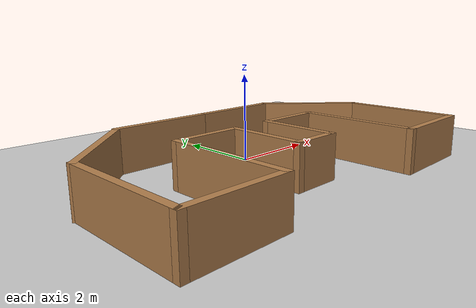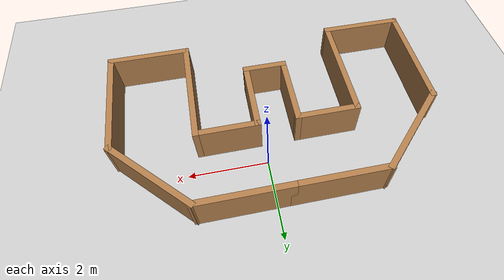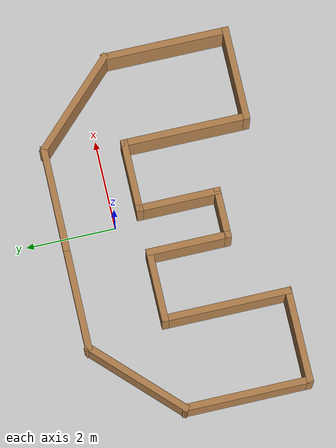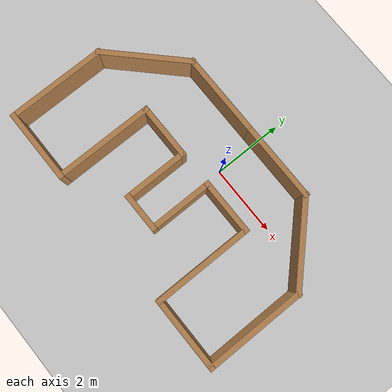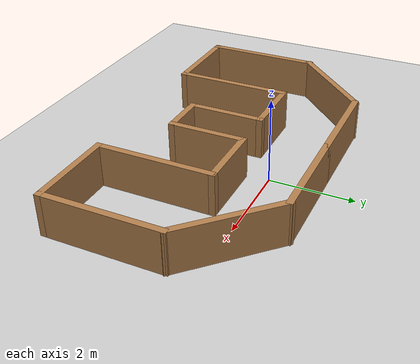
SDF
<sdf version='1.7'>
  <world name='default'>
    <light name='sun' type='directional'>
      <cast_shadows>1</cast_shadows>
      <pose>0 0 10 0 -0 0</pose>
      <diffuse>0.8 0.8 0.8 1</diffuse>
      <specular>0.2 0.2 0.2 1</specular>
      <attenuation>
        <range>1000</range>
        <constant>0.9</constant>
        <linear>0.01</linear>
        <quadratic>0.001</quadratic>
      </attenuation>
      <direction>-0.5 0.1 -0.9</direction>
      <spot>
        <inner_angle>0</inner_angle>
        <outer_angle>0</outer_angle>
        <falloff>0</falloff>
      </spot>
    </light>
    <model name='ground_plane'>
      <static>1</static>
      <link name='link'>
        <collision name='collision'>
          <geometry>
            <plane>
              <normal>0 0 1</normal>
              <size>100 100</size>
            </plane>
          </geometry>
          <surface>
            <contact>
              <collide_bitmask>65535</collide_bitmask>
              <ode/>
            </contact>
            <friction>
              <ode>
                <mu>100</mu>
                <mu2>50</mu2>
              </ode>
              <torsional>
                <ode/>
              </torsional>
            </friction>
            <bounce/>
          </surface>
          <max_contacts>10</max_contacts>
        </collision>
        <visual name='visual'>
          <cast_shadows>0</cast_shadows>
          <geometry>
            <plane>
              <normal>0 0 1</normal>
              <size>100 100</size>
            </plane>
          </geometry>
          <material>
            <script>
              <uri>file://media/materials/scripts/gazebo.material</uri>
              <name>Gazebo/Grey</name>
            </script>
          </material>
        </visual>
        <self_collide>0</self_collide>
        <enable_wind>0</enable_wind>
        <kinematic>0</kinematic>
      </link>
    </model>
    <gravity>0 0 -9.8</gravity>
    <magnetic_field>6e-06 2.3e-05 -4.2e-05</magnetic_field>
    <atmosphere type='adiabatic'/>
    <physics type='ode'>
      <max_step_size>0.001</max_step_size>
      <real_time_factor>1</real_time_factor>
      <real_time_update_rate>1000</real_time_update_rate>
    </physics>
    <scene>
      <ambient>0.4 0.4 0.4 1</ambient>
      <background>0.7 0.7 0.7 1</background>
      <shadows>1</shadows>
    </scene>
    <wind/>
    <spherical_coordinates>
      <surface_model>EARTH_WGS84</surface_model>
      <latitude_deg>0</latitude_deg>
      <longitude_deg>0</longitude_deg>
      <elevation>0</elevation>
      <heading_deg>0</heading_deg>
    </spherical_coordinates>
    <model name='aro_easy_1'>
      <pose>-0.369717 -0.872693 0 0 -0 0</pose>
      <link name='Wall_0'>
        <collision name='Wall_0_Collision'>
          <geometry>
            <box>
              <size>2.9 0.15 1</size>
            </box>
          </geometry>
          <pose>0 0 0.5 0 -0 0</pose>
          <max_contacts>10</max_contacts>
          <surface>
            <contact>
              <ode/>
            </contact>
            <bounce/>
            <friction>
              <torsional>
                <ode/>
              </torsional>
              <ode/>
            </friction>
          </surface>
        </collision>
        <visual name='Wall_0_Visual'>
          <pose>0 0 0.5 0 -0 0</pose>
          <geometry>
            <box>
              <size>2.9 0.15 1</size>
            </box>
          </geometry>
          <material>
            <script>
              <uri>file://media/materials/scripts/gazebo.material</uri>
              <name>Gazebo/Wood</name>
            </script>
            <ambient>1 1 1 1</ambient>
          </material>
          <meta>
            <layer>0</layer>
          </meta>
        </visual>
        <pose>-2 -1.0875 0 0 -0 -1.5708</pose>
        <self_collide>0</self_collide>
        <enable_wind>0</enable_wind>
        <kinematic>0</kinematic>
      </link>
      <link name='Wall_1'>
        <collision name='Wall_1_Collision'>
          <geometry>
            <box>
              <size>2.15 0.15 1</size>
            </box>
          </geometry>
          <pose>0 0 0.5 0 -0 0</pose>
          <max_contacts>10</max_contacts>
          <surface>
            <contact>
              <ode/>
            </contact>
            <bounce/>
            <friction>
              <torsional>
                <ode/>
              </torsional>
              <ode/>
            </friction>
          </surface>
        </collision>
        <visual name='Wall_1_Visual'>
          <pose>0 0 0.5 0 -0 0</pose>
          <geometry>
            <box>
              <size>2.15 0.15 1</size>
            </box>
          </geometry>
          <material>
            <script>
              <uri>file://media/materials/scripts/gazebo.material</uri>
              <name>Gazebo/Wood</name>
            </script>
            <ambient>1 1 1 1</ambient>
          </material>
          <meta>
            <layer>0</layer>
          </meta>
        </visual>
        <pose>-3 -2.4625 0 0 -0 3.14159</pose>
        <self_collide>0</self_collide>
        <enable_wind>0</enable_wind>
        <kinematic>0</kinematic>
      </link>
      <link name='Wall_11'>
        <collision name='Wall_11_Collision'>
          <geometry>
            <box>
              <size>2.9 0.15 1</size>
            </box>
          </geometry>
          <pose>0 0 0.5 0 -0 0</pose>
          <max_contacts>10</max_contacts>
          <surface>
            <contact>
              <ode/>
            </contact>
            <bounce/>
            <friction>
              <torsional>
                <ode/>
              </torsional>
              <ode/>
            </friction>
          </surface>
        </collision>
        <visual name='Wall_11_Visual'>
          <pose>0 0 0.5 0 -0 0</pose>
          <geometry>
            <box>
              <size>2.9 0.15 1</size>
            </box>
          </geometry>
          <material>
            <script>
              <uri>file://media/materials/scripts/gazebo.material</uri>
              <name>Gazebo/Wood</name>
            </script>
            <ambient>1 1 1 1</ambient>
          </material>
          <meta>
            <layer>0</layer>
          </meta>
        </visual>
        <pose>4 -1.0875 0 0 -0 -1.5708</pose>
        <self_collide>0</self_collide>
        <enable_wind>0</enable_wind>
        <kinematic>0</kinematic>
      </link>
      <link name='Wall_12'>
        <collision name='Wall_12_Collision'>
          <geometry>
            <box>
              <size>2.15 0.15 1</size>
            </box>
          </geometry>
          <pose>0 0 0.5 0 -0 0</pose>
          <max_contacts>10</max_contacts>
          <surface>
            <contact>
              <ode/>
            </contact>
            <bounce/>
            <friction>
              <torsional>
                <ode/>
              </torsional>
              <ode/>
            </friction>
          </surface>
        </collision>
        <visual name='Wall_12_Visual'>
          <pose>0 0 0.5 0 -0 0</pose>
          <geometry>
            <box>
              <size>2.15 0.15 1</size>
            </box>
          </geometry>
          <material>
            <script>
              <uri>file://media/materials/scripts/gazebo.material</uri>
              <name>Gazebo/Wood</name>
            </script>
            <ambient>1 1 1 1</ambient>
          </material>
          <meta>
            <layer>0</layer>
          </meta>
        </visual>
        <pose>3 -2.4625 0 0 -0 3.14159</pose>
        <self_collide>0</self_collide>
        <enable_wind>0</enable_wind>
        <kinematic>0</kinematic>
      </link>
      <link name='Wall_17'>
        <collision name='Wall_17_Collision'>
          <geometry>
            <box>
              <size>2.9 0.15 1</size>
            </box>
          </geometry>
          <pose>0 0 0.5 0 -0 0</pose>
          <max_contacts>10</max_contacts>
          <surface>
            <contact>
              <ode/>
            </contact>
            <bounce/>
            <friction>
              <torsional>
                <ode/>
              </torsional>
              <ode/>
            </friction>
          </surface>
        </collision>
        <visual name='Wall_17_Visual'>
          <pose>0 0 0.5 0 -0 0</pose>
          <geometry>
            <box>
              <size>2.9 0.15 1</size>
            </box>
          </geometry>
          <material>
            <script>
              <uri>file://media/materials/scripts/gazebo.material</uri>
              <name>Gazebo/Wood</name>
            </script>
            <ambient>1 1 1 1</ambient>
          </material>
          <meta>
            <layer>0</layer>
          </meta>
        </visual>
        <pose>2 -1.0875 0 0 -0 1.5708</pose>
        <self_collide>0</self_collide>
        <enable_wind>0</enable_wind>
        <kinematic>0</kinematic>
      </link>
      <link name='Wall_18'>
        <collision name='Wall_18_Collision'>
          <geometry>
            <box>
              <size>1.65 0.15 1</size>
            </box>
          </geometry>
          <pose>0 0 0.5 0 -0 0</pose>
          <max_contacts>10</max_contacts>
          <surface>
            <contact>
              <ode/>
            </contact>
            <bounce/>
            <friction>
              <torsional>
                <ode/>
              </torsional>
              <ode/>
            </friction>
          </surface>
        </collision>
        <visual name='Wall_18_Visual'>
          <pose>0 0 0.5 0 -0 0</pose>
          <geometry>
            <box>
              <size>1.65 0.15 1</size>
            </box>
          </geometry>
          <material>
            <script>
              <uri>file://media/materials/scripts/gazebo.material</uri>
              <name>Gazebo/Wood</name>
            </script>
            <ambient>1 1 1 1</ambient>
          </material>
          <meta>
            <layer>0</layer>
          </meta>
        </visual>
        <pose>1.25 0.2875 0 0 -0 3.14159</pose>
        <self_collide>0</self_collide>
        <enable_wind>0</enable_wind>
        <kinematic>0</kinematic>
      </link>
      <link name='Wall_19'>
        <collision name='Wall_19_Collision'>
          <geometry>
            <box>
              <size>1.9 0.15 1</size>
            </box>
          </geometry>
          <pose>0 0 0.5 0 -0 0</pose>
          <max_contacts>10</max_contacts>
          <surface>
            <contact>
              <ode/>
            </contact>
            <bounce/>
            <friction>
              <torsional>
                <ode/>
              </torsional>
              <ode/>
            </friction>
          </surface>
        </collision>
        <visual name='Wall_19_Visual'>
          <pose>0 0 0.5 0 -0 0</pose>
          <geometry>
            <box>
              <size>1.9 0.15 1</size>
            </box>
          </geometry>
          <material>
            <script>
              <uri>file://media/materials/scripts/gazebo.material</uri>
              <name>Gazebo/Wood</name>
            </script>
            <ambient>1 1 1 1</ambient>
          </material>
          <meta>
            <layer>0</layer>
          </meta>
        </visual>
        <pose>0.5 -0.5875 0 0 -0 -1.5708</pose>
        <self_collide>0</self_collide>
        <enable_wind>0</enable_wind>
        <kinematic>0</kinematic>
      </link>
      <link name='Wall_2'>
        <collision name='Wall_2_Collision'>
          <geometry>
            <box>
              <size>2.9 0.15 1</size>
            </box>
          </geometry>
          <pose>0 0 0.5 0 -0 0</pose>
          <max_contacts>10</max_contacts>
          <surface>
            <contact>
              <ode/>
            </contact>
            <bounce/>
            <friction>
              <torsional>
                <ode/>
              </torsional>
              <ode/>
            </friction>
          </surface>
        </collision>
        <visual name='Wall_2_Visual'>
          <pose>0 0 0.5 0 -0 0</pose>
          <geometry>
            <box>
              <size>2.9 0.15 1</size>
            </box>
          </geometry>
          <material>
            <script>
              <uri>file://media/materials/scripts/gazebo.material</uri>
              <name>Gazebo/Wood</name>
            </script>
            <ambient>1 1 1 1</ambient>
          </material>
          <meta>
            <layer>0</layer>
          </meta>
        </visual>
        <pose>-4 -1.0875 0 0 -0 1.5708</pose>
        <self_collide>0</self_collide>
        <enable_wind>0</enable_wind>
        <kinematic>0</kinematic>
      </link>
      <link name='Wall_20'>
        <collision name='Wall_20_Collision'>
          <geometry>
            <box>
              <size>1.15 0.15 1</size>
            </box>
          </geometry>
          <pose>0 0 0.5 0 -0 0</pose>
          <max_contacts>10</max_contacts>
          <surface>
            <contact>
              <ode/>
            </contact>
            <bounce/>
            <friction>
              <torsional>
                <ode/>
              </torsional>
              <ode/>
            </friction>
          </surface>
        </collision>
        <visual name='Wall_20_Visual'>
          <pose>0 0 0.5 0 -0 0</pose>
          <geometry>
            <box>
              <size>1.15 0.15 1</size>
            </box>
          </geometry>
          <material>
            <script>
              <uri>file://media/materials/scripts/gazebo.material</uri>
              <name>Gazebo/Wood</name>
            </script>
            <ambient>1 1 1 1</ambient>
          </material>
          <meta>
            <layer>0</layer>
          </meta>
        </visual>
        <pose>0 -1.4625 0 0 -0 3.14159</pose>
        <self_collide>0</self_collide>
        <enable_wind>0</enable_wind>
        <kinematic>0</kinematic>
      </link>
      <link name='Wall_21'>
        <collision name='Wall_21_Collision'>
          <geometry>
            <box>
              <size>1.9 0.15 1</size>
            </box>
          </geometry>
          <pose>0 0 0.5 0 -0 0</pose>
          <max_contacts>10</max_contacts>
          <surface>
            <contact>
              <ode/>
            </contact>
            <bounce/>
            <friction>
              <torsional>
                <ode/>
              </torsional>
              <ode/>
            </friction>
          </surface>
        </collision>
        <visual name='Wall_21_Visual'>
          <pose>0 0 0.5 0 -0 0</pose>
          <geometry>
            <box>
              <size>1.9 0.15 1</size>
            </box>
          </geometry>
          <material>
            <script>
              <uri>file://media/materials/scripts/gazebo.material</uri>
              <name>Gazebo/Wood</name>
            </script>
            <ambient>1 1 1 1</ambient>
          </material>
          <meta>
            <layer>0</layer>
          </meta>
        </visual>
        <pose>-0.5 -0.5875 0 0 -0 1.5708</pose>
        <self_collide>0</self_collide>
        <enable_wind>0</enable_wind>
        <kinematic>0</kinematic>
      </link>
      <link name='Wall_22'>
        <collision name='Wall_22_Collision'>
          <geometry>
            <box>
              <size>1.65 0.15 1</size>
            </box>
          </geometry>
          <pose>0 0 0.5 0 -0 0</pose>
          <max_contacts>10</max_contacts>
          <surface>
            <contact>
              <ode/>
            </contact>
            <bounce/>
            <friction>
              <torsional>
                <ode/>
              </torsional>
              <ode/>
            </friction>
          </surface>
        </collision>
        <visual name='Wall_22_Visual'>
          <pose>0 0 0.5 0 -0 0</pose>
          <geometry>
            <box>
              <size>1.65 0.15 1</size>
            </box>
          </geometry>
          <material>
            <script>
              <uri>file://media/materials/scripts/gazebo.material</uri>
              <name>Gazebo/Wood</name>
            </script>
            <ambient>1 1 1 1</ambient>
          </material>
          <meta>
            <layer>0</layer>
          </meta>
        </visual>
        <pose>-1.25 0.2875 0 0 -0 3.14159</pose>
        <self_collide>0</self_collide>
        <enable_wind>0</enable_wind>
        <kinematic>0</kinematic>
      </link>
      <link name='Wall_3'>
        <collision name='Wall_3_Collision'>
          <geometry>
            <box>
              <size>2.62487 0.15 1</size>
            </box>
          </geometry>
          <pose>0 0 0.5 0 -0 0</pose>
          <max_contacts>10</max_contacts>
          <surface>
            <contact>
              <ode/>
            </contact>
            <bounce/>
            <friction>
              <torsional>
                <ode/>
              </torsional>
              <ode/>
            </friction>
          </surface>
        </collision>
        <visual name='Wall_3_Visual'>
          <pose>0 0 0.5 0 -0 0</pose>
          <geometry>
            <box>
              <size>2.62487 0.15 1</size>
            </box>
          </geometry>
          <material>
            <script>
              <uri>file://media/materials/scripts/gazebo.material</uri>
              <name>Gazebo/Wood</name>
            </script>
            <ambient>1 1 1 1</ambient>
          </material>
          <meta>
            <layer>0</layer>
          </meta>
        </visual>
        <pose>-3.125 1.1625 0 0 -0 0.785398</pose>
        <self_collide>0</self_collide>
        <enable_wind>0</enable_wind>
        <kinematic>0</kinematic>
      </link>
      <link name='Wall_4'>
        <collision name='Wall_4_Collision'>
          <geometry>
            <box>
              <size>2.4 0.15 1</size>
            </box>
          </geometry>
          <pose>0 0 0.5 0 -0 0</pose>
          <max_contacts>10</max_contacts>
          <surface>
            <contact>
              <ode/>
            </contact>
            <bounce/>
            <friction>
              <torsional>
                <ode/>
              </torsional>
              <ode/>
            </friction>
          </surface>
        </collision>
        <visual name='Wall_4_Visual'>
          <pose>0 0 0.5 0 -0 0</pose>
          <geometry>
            <box>
              <size>2.4 0.15 1</size>
            </box>
          </geometry>
          <material>
            <script>
              <uri>file://media/materials/scripts/gazebo.material</uri>
              <name>Gazebo/Wood</name>
            </script>
            <ambient>1 1 1 1</ambient>
          </material>
          <meta>
            <layer>0</layer>
          </meta>
        </visual>
        <pose>-1.125 2.0375 0 0 -0 0</pose>
        <self_collide>0</self_collide>
        <enable_wind>0</enable_wind>
        <kinematic>0</kinematic>
      </link>
      <link name='Wall_5'>
        <collision name='Wall_5_Collision'>
          <geometry>
            <box>
              <size>2.4 0.15 1</size>
            </box>
          </geometry>
          <pose>0 0 0.5 0 -0 0</pose>
          <max_contacts>10</max_contacts>
          <surface>
            <contact>
              <ode/>
            </contact>
            <bounce/>
            <friction>
              <torsional>
                <ode/>
              </torsional>
              <ode/>
            </friction>
          </surface>
        </collision>
        <visual name='Wall_5_Visual'>
          <pose>0 0 0.5 0 -0 0</pose>
          <geometry>
            <box>
              <size>2.4 0.15 1</size>
            </box>
          </geometry>
          <material>
            <script>
              <uri>file://media/materials/scripts/gazebo.material</uri>
              <name>Gazebo/Wood</name>
            </script>
            <ambient>1 1 1 1</ambient>
          </material>
          <meta>
            <layer>0</layer>
          </meta>
        </visual>
        <pose>1.125 2.0375 0 0 -0 0</pose>
        <self_collide>0</self_collide>
        <enable_wind>0</enable_wind>
        <kinematic>0</kinematic>
      </link>
      <link name='Wall_6'>
        <collision name='Wall_6_Collision'>
          <geometry>
            <box>
              <size>2.62487 0.15 1</size>
            </box>
          </geometry>
          <pose>0 0 0.5 0 -0 0</pose>
          <max_contacts>10</max_contacts>
          <surface>
            <contact>
              <ode/>
            </contact>
            <bounce/>
            <friction>
              <torsional>
                <ode/>
              </torsional>
              <ode/>
            </friction>
          </surface>
        </collision>
        <visual name='Wall_6_Visual'>
          <pose>0 0 0.5 0 -0 0</pose>
          <geometry>
            <box>
              <size>2.62487 0.15 1</size>
            </box>
          </geometry>
          <material>
            <script>
              <uri>file://media/materials/scripts/gazebo.material</uri>
              <name>Gazebo/Wood</name>
            </script>
            <ambient>1 1 1 1</ambient>
          </material>
          <meta>
            <layer>0</layer>
          </meta>
        </visual>
        <pose>3.125 1.1625 0 0 -0 -0.785398</pose>
        <self_collide>0</self_collide>
        <enable_wind>0</enable_wind>
        <kinematic>0</kinematic>
      </link>
      <static>1</static>
    </model>
    <gui fullscreen='0'>
      <camera name='user_camera'>
        <pose>2.3782 -7.63089 14.7712 0 1.17964 1.6122</pose>
        <view_controller>orbit</view_controller>
        <projection_type>perspective</projection_type>
      </camera>
    </gui>
  </world>
</sdf>
